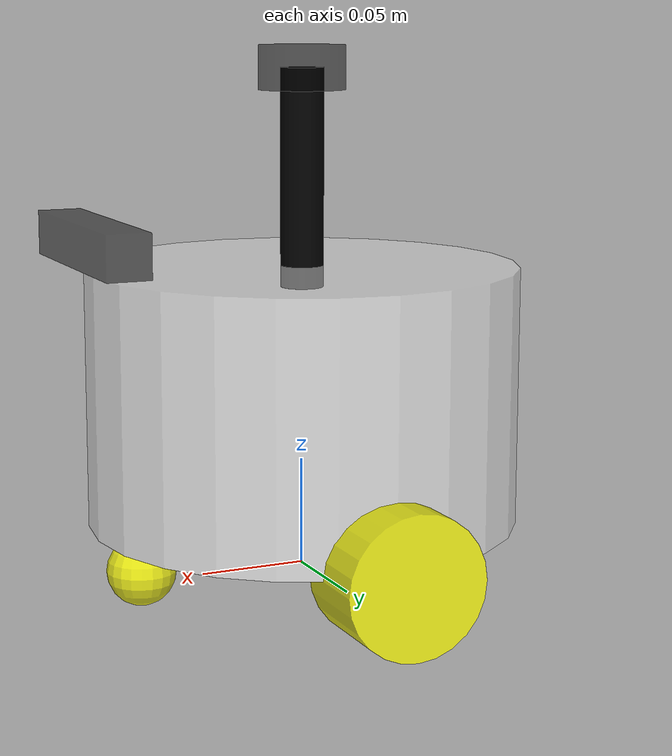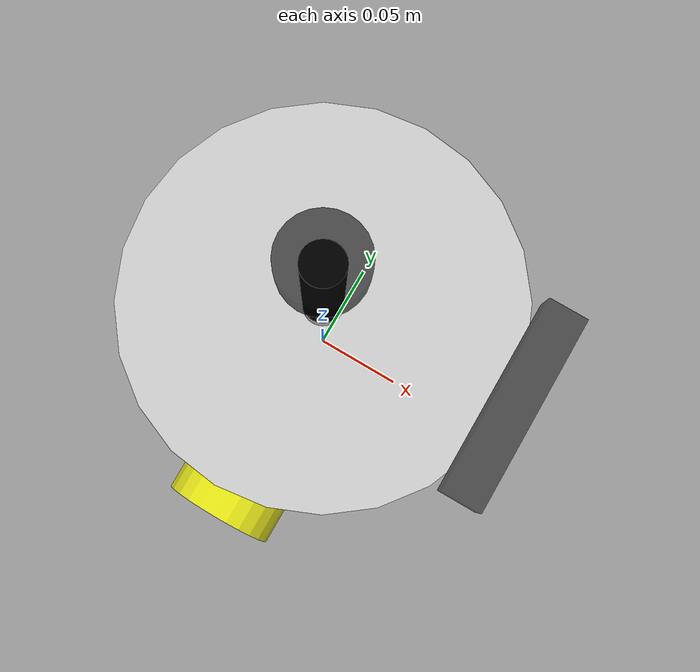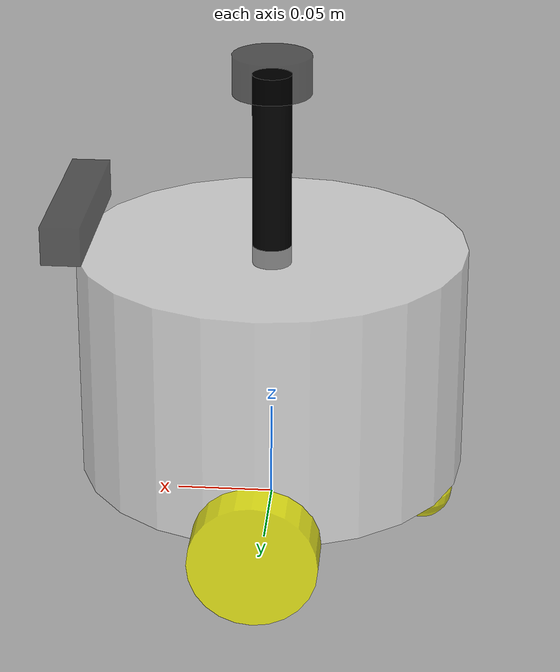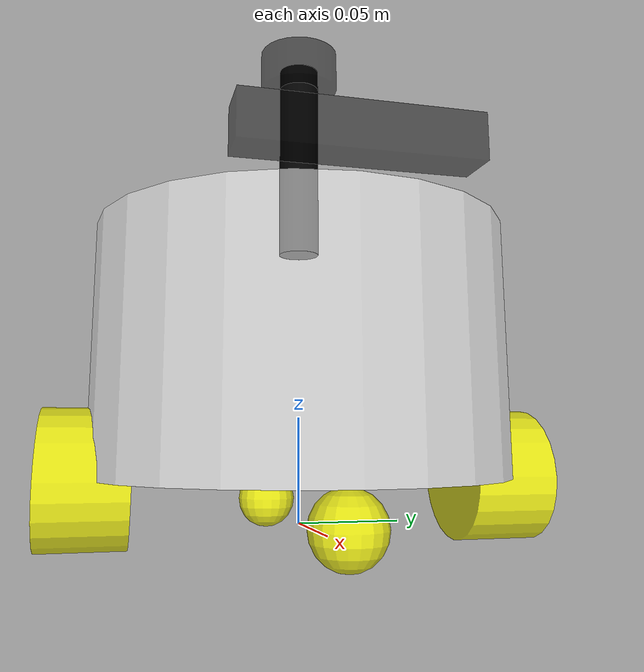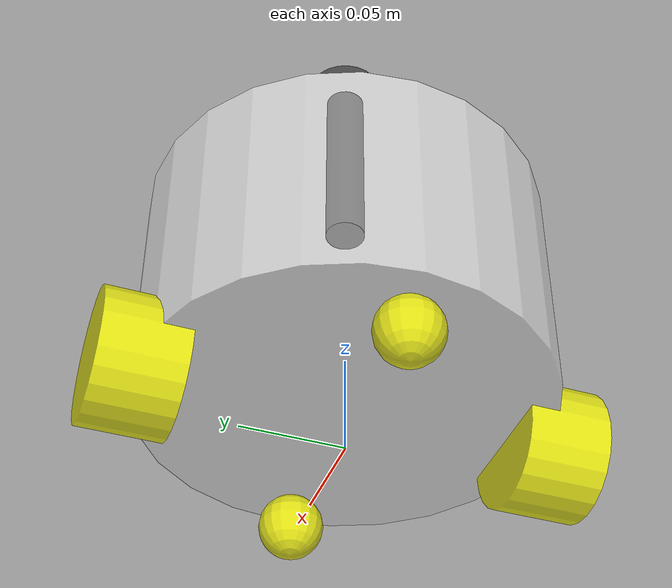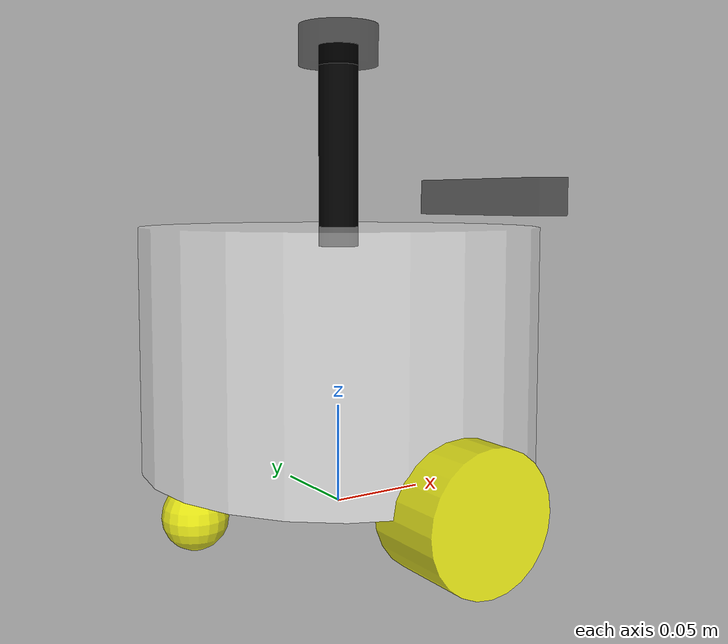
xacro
<?xml version="1.0"?>
<robot xmlns:xacro="http://www.ros.org/wiki/xacro" name="heshibot">
    <xacro:include filename="$(find heshibot_description)/urdf/heshibot/base.urdf.xacro" />
    <xacro:include filename="$(find heshibot_description)/urdf/heshibot/sensor/imu.urdf.xacro" />
    <xacro:include filename="$(find heshibot_description)/urdf/heshibot/sensor/camera.urdf.xacro" />
    <xacro:include filename="$(find heshibot_description)/urdf/heshibot/sensor/laser.urdf.xacro" />
    <xacro:include filename="$(find heshibot_description)/urdf/heshibot/actuator/wheel.urdf.xacro" />
    <xacro:include filename="$(find heshibot_description)/urdf/heshibot/actuator/caster.urdf.xacro" />
    <xacro:include filename="$(find heshibot_description)/urdf/heshibot/plugins/gazebo_control_plugin.xacro"/>
    <xacro:include filename="$(find heshibot_description)/urdf/heshibot/plugins/gazebo_sensor_plugin.xacro"/>
    <xacro:include filename="$(find heshibot_description)/urdf/heshibot/heshibot.ros2_control.xacro"/>

    <xacro:base_xacro radius="0.1" length="0.12"/>
    <xacro:imu_xacro xyz="0.0 0.0 0.02" rpy="0.0 0.0 0.0"/>
    <xacro:camera_xacro xyz="0.1 0.0 0.075" rpy="0.0 0.0 0.0"/>
    <xacro:laser_xacro xyz="0.0 0.0 0.10" rpy="0.0 0.0 0.0"/>
    <xacro:wheel_xacro wheel_name="left_wheel" xyz="0.0 0.10 -0.06" rpy="0.0 0.0 0.0"/>
    <xacro:wheel_xacro wheel_name="right_wheel" xyz="0.0 -0.10 -0.06" rpy="0.0 0.0 0.0"/>
    <xacro:caster_xacro caster_name="front_caster" xyz="0.08 0.0 -0.076" rpy="0.0 0.0 0.0"/>
    <xacro:caster_xacro caster_name="back_caster" xyz="-0.08 0.0 -0.076" rpy="0.0 0.0 0.0"/>
    <xacro:gazebo_sensor_plugin/>
    <xacro:heshibot_ros2_control/>

</robot>

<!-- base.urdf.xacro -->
<robot xmlns:xacro="http://www.ros.org/wiki/xacro">
    <xacro:include filename="$(find heshibot_description)/urdf/heshibot/common_inertia.xacro"/>

    <xacro:macro name="base_xacro" params="radius length">
        <link name="base_footprint"/>

        <!-- 机器人身体部分 -->
        <link name="base_link">
        <!-- 部件外观描述 -->
            <visual>
                <!-- 沿着自己几何中心的偏移和旋转量 -->
                <origin xyz="0.0 0.0 0.0" rpy="0.0 0.0 0.0"/>
                <!-- 几何形状定义 -->
                <geometry>
                <!-- 圆柱体定义半径，高度 -->
                <cylinder radius="${radius}" length="${length}"/>
                </geometry>
                <!-- 材质颜色定义 -->
                <material name="white">
                    <color rgba="1.0 1.0 1.0 0.5"/>
                </material>
            </visual>
            <collision>
                <!-- 沿着自己几何中心的偏移和旋转量 -->
                <origin xyz="0.0 0.0 0.0" rpy="0.0 0.0 0.0"/>
                <!-- 几何形状定义 -->
                <geometry>
                <!-- 圆柱体定义半径，高度 -->
                <cylinder radius="${radius}" length="${length}"/>
                </geometry>
                <!-- 材质颜色定义 -->
                <material name="white">
                    <color rgba="1.0 1.0 1.0 0.5"/>
                </material>
            </collision>

            <xacro:cylinder_inertia m="1.0" r="${radius}" h="${length}"/>
        </link>

        <joint name="base_footprint_joint" type="fixed">
            <origin xyz="0.0 0.0 ${length/2.0+0.032-0.01}" rpy="0.0 0.0 0.0"/>
            <parent link="base_footprint"/>
            <child link="base_link"/>
        </joint>

        <gazebo reference="base_link">
            <material>Gazebo/Green</material>
        </gazebo>
    </xacro:macro>
</robot>

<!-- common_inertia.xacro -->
<robot xmlns:xacro="http://www.ros.org/wiki/xacro">
    <xacro:macro name="box_inertia" params="m w h d">
        <inertial>
            <mass value="${m}"/>
            <inertia ixx="${(m/12)*(h*h+d*d)}" ixy="0.0" ixz="0.0" iyy="${(m/12)*(w*w+d*d)}" iyz="0.0" izz="${(m/12)*(w*w+h*h)}"/>
        </inertial>
    </xacro:macro>

    <xacro:macro name="cylinder_inertia" params="m r h">
        <inertial>
            <mass value="${m}"/>
            <inertia ixx="${(m/12)*(h*h+3*r*r)}" ixy="0.0" ixz="0.0" iyy="${(m/12)*(h*h+3*r*r)}" iyz="0.0" izz="${m/2*r*r}"/>
        </inertial>
    </xacro:macro>

    <xacro:macro name="sphere_inertia" params="m r">
        <inertial>
            <mass value="${m}"/>
            <inertia ixx="${2*m*r*r/5}" ixy="0.0" ixz="0.0" iyy="${2*m*r*r/5}" iyz="0.0" izz="${2*m*r*r/5}"/>
        </inertial>
    </xacro:macro>
</robot>

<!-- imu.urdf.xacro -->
<robot xmlns:xacro="http://www.ros.org/wiki/xacro">
    <xacro:include filename="$(find heshibot_description)/urdf/heshibot/common_inertia.xacro"/>

    <xacro:macro name="imu_xacro" params=" xyz rpy">
        <!-- 机器人的IMU部件，惯性测量传感器 -->
        <link name="imu_link">
            <visual>
                <origin xyz="0.0 0.0 0.0" rpy="0.0 0.0 0.0"/>
                <geometry>
                    <box size="0.02 0.02 0.02"/>
                </geometry>
                <material name="black">
                    <color rgba="0.0 0.0 0.0 0.5"/>
                </material>
            </visual>
            <collision>
                <origin xyz="0.0 0.0 0.0" rpy="0.0 0.0 0.0"/>
                <geometry>
                    <box size="0.02 0.02 0.02"/>
                </geometry>
                <material name="black">
                    <color rgba="0.0 0.0 0.0 0.5"/>
                </material>
            </collision>

            <xacro:box_inertia m="0.05" w="0.02" h="0.02" d="0.02"/>
        </link>

        <!-- 机器人关节定义，组合部件 -->
        <joint name="imu_joint" type="fixed">
            <parent link="base_link"/>
            <child link="imu_link"/>
            <origin xyz="${xyz}" rpy="${rpy}"/>
        </joint>

        <gazebo reference="imu_link">
            <material>Gazebo/Blue</material>
        </gazebo>
    </xacro:macro>
</robot>

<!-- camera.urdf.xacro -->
<robot xmlns:xacro="http://www.ros.org/wiki/xacro">
    <xacro:include filename="$(find heshibot_description)/urdf/heshibot/common_inertia.xacro"/>

    <xacro:macro name="camera_xacro" params=" xyz rpy">
        <!-- 机器人的camera部件，惯性测量传感器 -->
        <link name="camera_link">
            <visual>
                <origin xyz="0.0 0.0 0.0" rpy="0.0 0.0 0.0"/>
                <geometry>
                    <box size="0.02 0.1 0.02"/>
                </geometry>
                <material name="black">
                    <color rgba="0.0 0.0 0.0 0.5"/>
                </material>
            </visual>
            <collision>
                <origin xyz="0.0 0.0 0.0" rpy="0.0 0.0 0.0"/>
                <geometry>
                    <box size="0.02 0.1 0.02"/>
                </geometry>
                <material name="black">
                    <color rgba="0.0 0.0 0.0 0.5"/>
                </material>
            </collision>

            <xacro:box_inertia m="0.1" w="0.02" h="0.1" d="0.02"/>
        </link>

        <link name="camera_optical_link"></link>

        <!-- 机器人关节定义，组合部件 -->
        <joint name="camera_joint" type="fixed">
            <parent link="base_link"/>
            <child link="camera_link"/>
            <origin xyz="${xyz}" rpy="${rpy}"/>
        </joint>

        <joint name="camera__optical_joint" type="fixed">
            <parent link="camera_link"/>
            <child link="camera_optical_link"/>
            <origin xyz="${xyz}" rpy="${-pi/2} 0.0 ${-pi/2}"/>
        </joint>

        <gazebo reference="camera_link">
            <material>Gazebo/Red</material>
        </gazebo>
    </xacro:macro>
</robot>

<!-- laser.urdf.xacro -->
<robot xmlns:xacro="http://www.ros.org/wiki/xacro">
    <xacro:include filename="$(find heshibot_description)/urdf/heshibot/common_inertia.xacro"/>

    <xacro:macro name="laser_xacro" params=" xyz rpy">
        <!-- laser支撑杆部件定义 -->
        <link name="laser_surpport_link">
            <visual>
                <origin xyz="0.0 0.0 0.0" rpy="0.0 0.0 0.0"/>
                <geometry>
                    <cylinder radius="0.01" length="0.1"/>
                </geometry>
                <material name="black">
                    <color rgba="0.0 0.0 0.0 1.0"/>
                </material>
            </visual>
            <collision>
                <origin xyz="0.0 0.0 0.0" rpy="0.0 0.0 0.0"/>
                <geometry>
                    <cylinder radius="0.01" length="0.1"/>
                </geometry>
                <material name="black">
                    <color rgba="0.0 0.0 0.0 1.0"/>
                </material>
            </collision>

            <xacro:cylinder_inertia m="0.05" r="0.01" h="0.1"/>
        </link>

        <!-- 机器人的laser部件，惯性测量传感器 -->
        <link name="laser_link">
            <visual>
                <origin xyz="0.0 0.0 0.0" rpy="0.0 0.0 0.0"/>
                <geometry>
                    <cylinder radius="0.02" length="0.02"/>
                </geometry>
                <material name="black">
                    <color rgba="0.0 0.0 0.0 0.5"/>
                </material>
            </visual>
            <collision>
                <origin xyz="0.0 0.0 0.0" rpy="0.0 0.0 0.0"/>
                <geometry>
                    <cylinder radius="0.02" length="0.02"/>
                </geometry>
                <material name="black">
                    <color rgba="0.0 0.0 0.0 0.5"/>
                </material>
            </collision>

            <xacro:cylinder_inertia m="0.1" r="0.02" h="0.02"/>
        </link>

        <!-- 机器人关节定义，组合部件 -->
        <joint name="laser_joint" type="fixed">
            <parent link="laser_surpport_link"/>
            <child link="laser_link"/>
            <origin xyz="0.0 0.0 0.05" rpy="${rpy}"/>
        </joint>

        <joint name="laser_surpport_joint" type="fixed">
            <parent link="base_link"/>
            <child link="laser_surpport_link"/>
            <origin xyz="${xyz}" rpy="${rpy}"/>
        </joint>

        <gazebo reference="laser_surpport_link">
            <material>Gazebo/Black</material>
        </gazebo>
        <gazebo reference="laser_link">
            <material>Gazebo/Black</material>
        </gazebo>
    </xacro:macro>
</robot>

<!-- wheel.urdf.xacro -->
<robot xmlns:xacro="http://www.ros.org/wiki/xacro">
    <xacro:include filename="$(find heshibot_description)/urdf/heshibot/common_inertia.xacro"/>

    <xacro:macro name="wheel_xacro" params="wheel_name xyz rpy">
        <!-- 机器人的IMU部件，惯性测量传感器 -->
        <link name="${wheel_name}_link">
            <visual>
                <origin xyz="0.0 0.0 0.0" rpy="1.57079 0.0 0.0"/>
                <geometry>
                    <cylinder radius="0.032" length="0.04"/>
                </geometry>
                <material name="yellow">
                    <color rgba="1.0 1.0 0.0 0.8"/>
                </material>
            </visual>
            <collision>
                <origin xyz="0.0 0.0 0.0" rpy="1.57079 0.0 0.0"/>
                <geometry>
                    <cylinder radius="0.032" length="0.04"/>
                </geometry>
                <material name="yellow">
                    <color rgba="1.0 1.0 0.0 0.8"/>
                </material>
            </collision>

            <xacro:cylinder_inertia m="0.05" r="0.032" h="0.04"/>
        </link>

        <!-- 机器人关节定义，组合部件 -->
        <joint name="${wheel_name}_joint" type="continuous">
            <parent link="base_link"/>
            <child link="${wheel_name}_link"/>
            <origin xyz="${xyz}" rpy="${rpy}"/>
            <axis xyz="0.0 1.0 0.0"/>
        </joint>

        <gazebo reference="${wheel_name}_link">
            <mu1 value="20.0"/>
            <mu2 value="20.0"/>
            <kp value="1000000000.0"/>
            <kd value="1.0"/>
            <material>Gazebo/Yellow</material>
        </gazebo>
    </xacro:macro>
</robot>

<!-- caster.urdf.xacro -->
<robot xmlns:xacro="http://www.ros.org/wiki/xacro">
    <xacro:include filename="$(find heshibot_description)/urdf/heshibot/common_inertia.xacro"/>

    <xacro:macro name="caster_xacro" params="caster_name xyz rpy">
        <!-- 机器人的IMU部件，惯性测量传感器 -->
        <link name="${caster_name}_link">
            <visual>
                <origin xyz="0.0 0.0 0.0" rpy="0.0 0.0 0.0"/>
                <geometry>
                    <sphere radius="0.016"/>
                </geometry>
                <material name="yellow">
                    <color rgba="1.0 1.0 0.0 0.8"/>
                </material>
            </visual>
            <collision>
                <origin xyz="0.0 0.0 0.0" rpy="0.0 0.0 0.0"/>
                <geometry>
                    <sphere radius="0.016"/>
                </geometry>
                <material name="yellow">
                    <color rgba="1.0 1.0 0.0 0.8"/>
                </material>
            </collision>

            <xacro:sphere_inertia m="0.05" r="0.016"/>
        </link>

        <!-- 机器人关节定义，组合部件 -->
        <joint name="${caster_name}_joint" type="fixed">
            <parent link="base_link"/>
            <child link="${caster_name}_link"/>
            <origin xyz="${xyz}" rpy="${rpy}"/>
        </joint>

        <gazebo reference="${caster_name}_link">
            <mu1 value="0.0"/>
            <mu2 value="0.0"/>
            <kp value="1000000000.0"/>
            <kd value="1.0"/>
            <material>Gazebo/Grey</material>
        </gazebo>
    </xacro:macro>
</robot>
